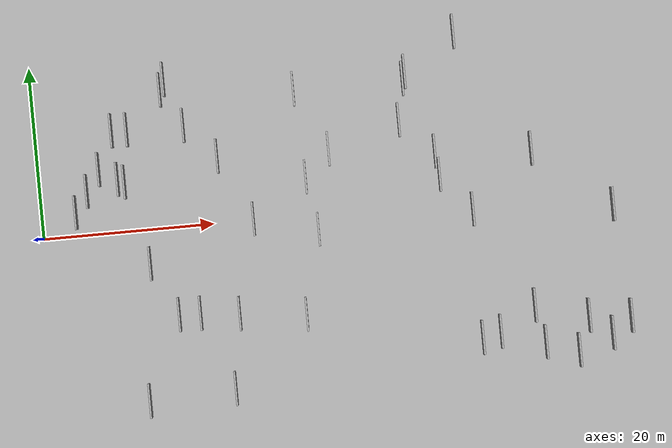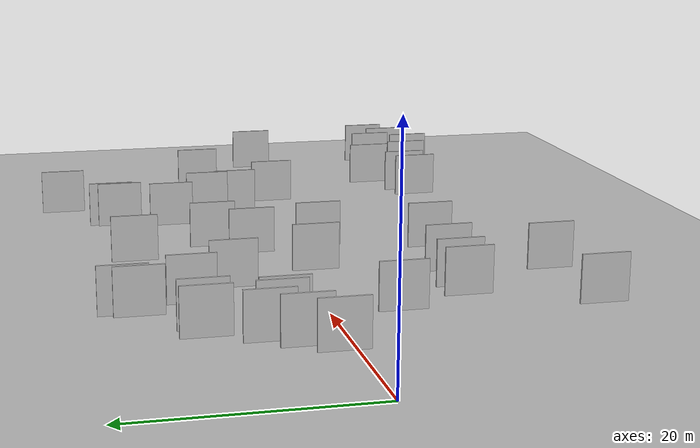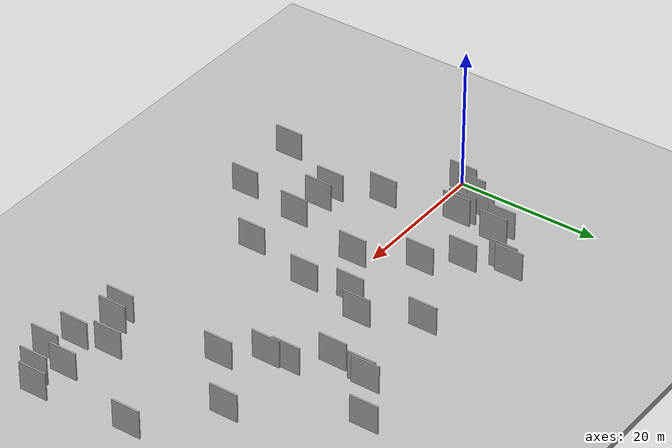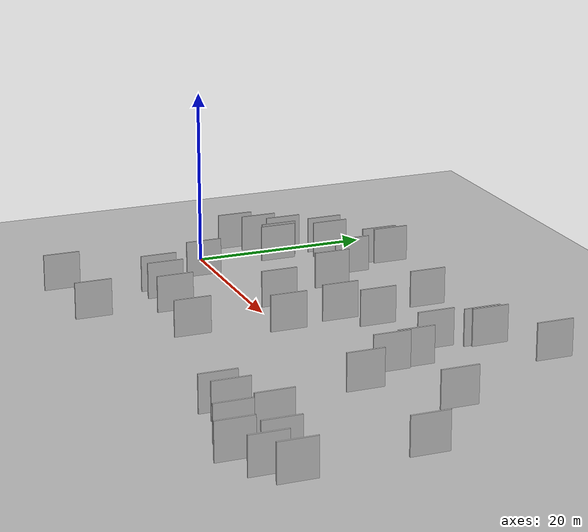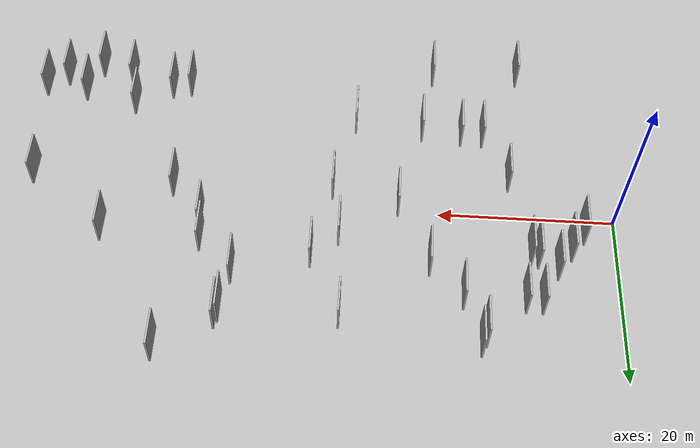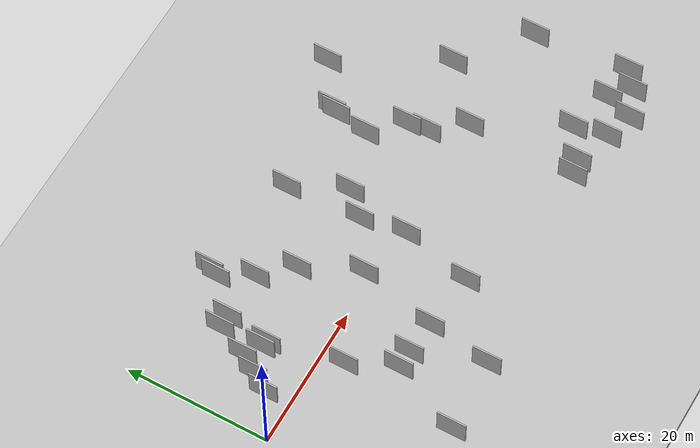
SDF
<?xml version="1.0" encoding="utf-8"?>

<sdf version="1.6">

   <world name="default">

      <gui fullscreen="0">

         <camera name="user_camera">

            <pose>-15 0 4.57585 0 0 0</pose>

            <view_controller>orbit</view_controller>

         </camera>

      </gui>

      <scene>

         <sky>

           <clouds>

             <speed>12</speed>

           </clouds>

         </sky>

         <ambient>0.4 0.4 0.4 1</ambient>

         <background>0.7 0.7 0.7 1</background>

         <shadows>1</shadows>

      </scene>

      <gravity>0 0 -9.8066</gravity>

      <magnetic_field>6e-06 2.3e-05 -4.2e-05</magnetic_field>

      <physics default="0" name="default_physics" type="ode">

         <ode>

            <solver>

               <type>quick</type>

               <iters>10</iters>

               <sor>1.0</sor>

               <use_dynamic_moi_rescaling>0</use_dynamic_moi_rescaling>

            </solver>

            <constraints>

               <cfm>0</cfm>

               <erp>0.2</erp>

               <contact_max_correcting_vel>100</contact_max_correcting_vel>

               <contact_surface_layer>0.001</contact_surface_layer>

            </constraints>

         </ode>

         <max_step_size>0.004</max_step_size>

         <real_time_factor>1</real_time_factor>

         <real_time_update_rate>250</real_time_update_rate>

      </physics>

      <light name="sun" type="directional">

         <cast_shadows>1</cast_shadows>

         <pose>0 0 10 0 0 0</pose>

         <diffuse>0.8 0.8 0.8 1</diffuse>

         <specular>0.2 0.2 0.2 1</specular>

         <attenuation>

            <range>1000</range>

            <constant>0.9</constant>

            <linear>0.01</linear>

            <quadratic>0.001</quadratic>

         </attenuation>

         <direction>-0.5 0.1 -0.9</direction>

      </light>

      <include>

         <name>ground_plane_1</name>

         <uri>model://HANNAS_ground_plane</uri>

         <pose>0 0 0  0 0 0</pose>

      </include>

      <include>

         <name>ground_plane_2</name>

         <uri>model://HANNAS_ground_plane</uri>

         <pose>100 0 0  0 0 0</pose>

      </include>

      <model name="HANNAS_wall_1">

         <static>1</static>

         <pose frame="">43.6180 15.5621 2.5 0.000000 0.000000 1.570796</pose>

         <link name="link">

            <pose frame="">0 0 2.00 0 0 0</pose>

            <collision name="collision">

               <geometry>

                  <box>

                     <size>4.00 0.2 4.00</size>

                  </box>

               </geometry>

               <max_contacts>10</max_contacts>

               <surface>

                  <contact>

                     <ode/>

                  </contact>

                  <bounce/>

                  <friction>

                     <torsional>

                        <ode/>

                     </torsional>

                     <ode/>

                  </friction>

               </surface>

            </collision>

            <visual name="visual">

               <cast_shadows>0</cast_shadows>

               <geometry>

                  <box>

                     <size>4.00 0.2 4.00</size>

                  </box>

               </geometry>

               <material>

                  <script>

                     <uri>model://HANNAS_wall/materials/scripts</uri>

                     <uri>model://HANNAS_wall/materials/textures</uri>

                     <name>vrc/HANNAS_wall</name>

                  </script>

               </material>

            </visual>

            <self_collide>0</self_collide>

            <enable_wind>0</enable_wind>

            <kinematic>0</kinematic>

         </link>

      </model>

      <model name="HANNAS_wall_2">

         <static>1</static>

         <pose frame="">42.4543 10.0352 2.5 0.000000 0.000000 1.570796</pose>

         <link name="link">

            <pose frame="">0 0 2.00 0 0 0</pose>

            <collision name="collision">

               <geometry>

                  <box>

                     <size>4.00 0.2 4.00</size>

                  </box>

               </geometry>

               <max_contacts>10</max_contacts>

               <surface>

                  <contact>

                     <ode/>

                  </contact>

                  <bounce/>

                  <friction>

                     <torsional>

                        <ode/>

                     </torsional>

                     <ode/>

                  </friction>

               </surface>

            </collision>

            <visual name="visual">

               <cast_shadows>0</cast_shadows>

               <geometry>

                  <box>

                     <size>4.00 0.2 4.00</size>

                  </box>

               </geometry>

               <material>

                  <script>

                     <uri>model://HANNAS_wall/materials/scripts</uri>

                     <uri>model://HANNAS_wall/materials/textures</uri>

                     <name>vrc/HANNAS_wall</name>

                  </script>

               </material>

            </visual>

            <self_collide>0</self_collide>

            <enable_wind>0</enable_wind>

            <kinematic>0</kinematic>

         </link>

      </model>

      <model name="HANNAS_wall_3">

         <static>1</static>

         <pose frame="">30.5993 14.7502 2.5 0.000000 0.000000 1.570796</pose>

         <link name="link">

            <pose frame="">0 0 2.00 0 0 0</pose>

            <collision name="collision">

               <geometry>

                  <box>

                     <size>4.00 0.2 4.00</size>

                  </box>

               </geometry>

               <max_contacts>10</max_contacts>

               <surface>

                  <contact>

                     <ode/>

                  </contact>

                  <bounce/>

                  <friction>

                     <torsional>

                        <ode/>

                     </torsional>

                     <ode/>

                  </friction>

               </surface>

            </collision>

            <visual name="visual">

               <cast_shadows>0</cast_shadows>

               <geometry>

                  <box>

                     <size>4.00 0.2 4.00</size>

                  </box>

               </geometry>

               <material>

                  <script>

                     <uri>model://HANNAS_wall/materials/scripts</uri>

                     <uri>model://HANNAS_wall/materials/textures</uri>

                     <name>vrc/HANNAS_wall</name>

                  </script>

               </material>

            </visual>

            <self_collide>0</self_collide>

            <enable_wind>0</enable_wind>

            <kinematic>0</kinematic>

         </link>

      </model>

      <model name="HANNAS_wall_4">

         <static>1</static>

         <pose frame="">46.6108 3.3022 2.5 0.000000 0.000000 1.570796</pose>

         <link name="link">

            <pose frame="">0 0 2.00 0 0 0</pose>

            <collision name="collision">

               <geometry>

                  <box>

                     <size>4.00 0.2 4.00</size>

                  </box>

               </geometry>

               <max_contacts>10</max_contacts>

               <surface>

                  <contact>

                     <ode/>

                  </contact>

                  <bounce/>

                  <friction>

                     <torsional>

                        <ode/>

                     </torsional>

                     <ode/>

                  </friction>

               </surface>

            </collision>

            <visual name="visual">

               <cast_shadows>0</cast_shadows>

               <geometry>

                  <box>

                     <size>4.00 0.2 4.00</size>

                  </box>

               </geometry>

               <material>

                  <script>

                     <uri>model://HANNAS_wall/materials/scripts</uri>

                     <uri>model://HANNAS_wall/materials/textures</uri>

                     <name>vrc/HANNAS_wall</name>

                  </script>

               </material>

            </visual>

            <self_collide>0</self_collide>

            <enable_wind>0</enable_wind>

            <kinematic>0</kinematic>

         </link>

      </model>

      <model name="HANNAS_wall_5">

         <static>1</static>

         <pose frame="">5.6386 5.0842 2.5 0.000000 0.000000 1.570796</pose>

         <link name="link">

            <pose frame="">0 0 2.00 0 0 0</pose>

            <collision name="collision">

               <geometry>

                  <box>

                     <size>4.00 0.2 4.00</size>

                  </box>

               </geometry>

               <max_contacts>10</max_contacts>

               <surface>

                  <contact>

                     <ode/>

                  </contact>

                  <bounce/>

                  <friction>

                     <torsional>

                        <ode/>

                     </torsional>

                     <ode/>

                  </friction>

               </surface>

            </collision>

            <visual name="visual">

               <cast_shadows>0</cast_shadows>

               <geometry>

                  <box>

                     <size>4.00 0.2 4.00</size>

                  </box>

               </geometry>

               <material>

                  <script>

                     <uri>model://HANNAS_wall/materials/scripts</uri>

                     <uri>model://HANNAS_wall/materials/textures</uri>

                     <name>vrc/HANNAS_wall</name>

                  </script>

               </material>

            </visual>

            <self_collide>0</self_collide>

            <enable_wind>0</enable_wind>

            <kinematic>0</kinematic>

         </link>

      </model>

      <model name="HANNAS_wall_6">

         <static>1</static>

         <pose frame="">29.8124 -11.4323 2.5 0.000000 0.000000 1.570796</pose>

         <link name="link">

            <pose frame="">0 0 2.00 0 0 0</pose>

            <collision name="collision">

               <geometry>

                  <box>

                     <size>4.00 0.2 4.00</size>

                  </box>

               </geometry>

               <max_contacts>10</max_contacts>

               <surface>

                  <contact>

                     <ode/>

                  </contact>

                  <bounce/>

                  <friction>

                     <torsional>

                        <ode/>

                     </torsional>

                     <ode/>

                  </friction>

               </surface>

            </collision>

            <visual name="visual">

               <cast_shadows>0</cast_shadows>

               <geometry>

                  <box>

                     <size>4.00 0.2 4.00</size>

                  </box>

               </geometry>

               <material>

                  <script>

                     <uri>model://HANNAS_wall/materials/scripts</uri>

                     <uri>model://HANNAS_wall/materials/textures</uri>

                     <name>vrc/HANNAS_wall</name>

                  </script>

               </material>

            </visual>

            <self_collide>0</self_collide>

            <enable_wind>0</enable_wind>

            <kinematic>0</kinematic>

         </link>

      </model>

      <model name="HANNAS_wall_7">

         <static>1</static>

         <pose frame="">34.0340 7.4608 2.5 0.000000 0.000000 1.570796</pose>

         <link name="link">

            <pose frame="">0 0 2.00 0 0 0</pose>

            <collision name="collision">

               <geometry>

                  <box>

                     <size>4.00 0.2 4.00</size>

                  </box>

               </geometry>

               <max_contacts>10</max_contacts>

               <surface>

                  <contact>

                     <ode/>

                  </contact>

                  <bounce/>

                  <friction>

                     <torsional>

                        <ode/>

                     </torsional>

                     <ode/>

                  </friction>

               </surface>

            </collision>

            <visual name="visual">

               <cast_shadows>0</cast_shadows>

               <geometry>

                  <box>

                     <size>4.00 0.2 4.00</size>

                  </box>

               </geometry>

               <material>

                  <script>

                     <uri>model://HANNAS_wall/materials/scripts</uri>

                     <uri>model://HANNAS_wall/materials/textures</uri>

                     <name>vrc/HANNAS_wall</name>

                  </script>

               </material>

            </visual>

            <self_collide>0</self_collide>

            <enable_wind>0</enable_wind>

            <kinematic>0</kinematic>

         </link>

      </model>

      <model name="HANNAS_wall_8">

         <static>1</static>

         <pose frame="">21.0827 7.7822 2.5 0.000000 0.000000 1.570796</pose>

         <link name="link">

            <pose frame="">0 0 2.00 0 0 0</pose>

            <collision name="collision">

               <geometry>

                  <box>

                     <size>4.00 0.2 4.00</size>

                  </box>

               </geometry>

               <max_contacts>10</max_contacts>

               <surface>

                  <contact>

                     <ode/>

                  </contact>

                  <bounce/>

                  <friction>

                     <torsional>

                        <ode/>

                     </torsional>

                     <ode/>

                  </friction>

               </surface>

            </collision>

            <visual name="visual">

               <cast_shadows>0</cast_shadows>

               <geometry>

                  <box>

                     <size>4.00 0.2 4.00</size>

                  </box>

               </geometry>

               <material>

                  <script>

                     <uri>model://HANNAS_wall/materials/scripts</uri>

                     <uri>model://HANNAS_wall/materials/textures</uri>

                     <name>vrc/HANNAS_wall</name>

                  </script>

               </material>

            </visual>

            <self_collide>0</self_collide>

            <enable_wind>0</enable_wind>

            <kinematic>0</kinematic>

         </link>

      </model>

      <model name="HANNAS_wall_9">

         <static>1</static>

         <pose frame="">66.3487 -1.9586 2.5 0.000000 0.000000 1.570796</pose>

         <link name="link">

            <pose frame="">0 0 2.00 0 0 0</pose>

            <collision name="collision">

               <geometry>

                  <box>

                     <size>4.00 0.2 4.00</size>

                  </box>

               </geometry>

               <max_contacts>10</max_contacts>

               <surface>

                  <contact>

                     <ode/>

                  </contact>

                  <bounce/>

                  <friction>

                     <torsional>

                        <ode/>

                     </torsional>

                     <ode/>

                  </friction>

               </surface>

            </collision>

            <visual name="visual">

               <cast_shadows>0</cast_shadows>

               <geometry>

                  <box>

                     <size>4.00 0.2 4.00</size>

                  </box>

               </geometry>

               <material>

                  <script>

                     <uri>model://HANNAS_wall/materials/scripts</uri>

                     <uri>model://HANNAS_wall/materials/textures</uri>

                     <name>vrc/HANNAS_wall</name>

                  </script>

               </material>

            </visual>

            <self_collide>0</self_collide>

            <enable_wind>0</enable_wind>

            <kinematic>0</kinematic>

         </link>

      </model>

      <model name="HANNAS_wall_10">

         <static>1</static>

         <pose frame="">31.1070 4.4461 2.5 0.000000 0.000000 1.570796</pose>

         <link name="link">

            <pose frame="">0 0 2.00 0 0 0</pose>

            <collision name="collision">

               <geometry>

                  <box>

                     <size>4.00 0.2 4.00</size>

                  </box>

               </geometry>

               <max_contacts>10</max_contacts>

               <surface>

                  <contact>

                     <ode/>

                  </contact>

                  <bounce/>

                  <friction>

                     <torsional>

                        <ode/>

                     </torsional>

                     <ode/>

                  </friction>

               </surface>

            </collision>

            <visual name="visual">

               <cast_shadows>0</cast_shadows>

               <geometry>

                  <box>

                     <size>4.00 0.2 4.00</size>

                  </box>

               </geometry>

               <material>

                  <script>

                     <uri>model://HANNAS_wall/materials/scripts</uri>

                     <uri>model://HANNAS_wall/materials/textures</uri>

                     <name>vrc/HANNAS_wall</name>

                  </script>

               </material>

            </visual>

            <self_collide>0</self_collide>

            <enable_wind>0</enable_wind>

            <kinematic>0</kinematic>

         </link>

      </model>

      <model name="HANNAS_wall_11">

         <static>1</static>

         <pose frame="">15.0589 -10.1258 2.5 0.000000 0.000000 1.570796</pose>

         <link name="link">

            <pose frame="">0 0 2.00 0 0 0</pose>

            <collision name="collision">

               <geometry>

                  <box>

                     <size>4.00 0.2 4.00</size>

                  </box>

               </geometry>

               <max_contacts>10</max_contacts>

               <surface>

                  <contact>

                     <ode/>

                  </contact>

                  <bounce/>

                  <friction>

                     <torsional>

                        <ode/>

                     </torsional>

                     <ode/>

                  </friction>

               </surface>

            </collision>

            <visual name="visual">

               <cast_shadows>0</cast_shadows>

               <geometry>

                  <box>

                     <size>4.00 0.2 4.00</size>

                  </box>

               </geometry>

               <material>

                  <script>

                     <uri>model://HANNAS_wall/materials/scripts</uri>

                     <uri>model://HANNAS_wall/materials/textures</uri>

                     <name>vrc/HANNAS_wall</name>

                  </script>

               </material>

            </visual>

            <self_collide>0</self_collide>

            <enable_wind>0</enable_wind>

            <kinematic>0</kinematic>

         </link>

      </model>

      <model name="HANNAS_wall_12">

         <static>1</static>

         <pose frame="">62.4480 -14.5746 2.5 0.000000 0.000000 1.570796</pose>

         <link name="link">

            <pose frame="">0 0 2.00 0 0 0</pose>

            <collision name="collision">

               <geometry>

                  <box>

                     <size>4.00 0.2 4.00</size>

                  </box>

               </geometry>

               <max_contacts>10</max_contacts>

               <surface>

                  <contact>

                     <ode/>

                  </contact>

                  <bounce/>

                  <friction>

                     <torsional>

                        <ode/>

                     </torsional>

                     <ode/>

                  </friction>

               </surface>

            </collision>

            <visual name="visual">

               <cast_shadows>0</cast_shadows>

               <geometry>

                  <box>

                     <size>4.00 0.2 4.00</size>

                  </box>

               </geometry>

               <material>

                  <script>

                     <uri>model://HANNAS_wall/materials/scripts</uri>

                     <uri>model://HANNAS_wall/materials/textures</uri>

                     <name>vrc/HANNAS_wall</name>

                  </script>

               </material>

            </visual>

            <self_collide>0</self_collide>

            <enable_wind>0</enable_wind>

            <kinematic>0</kinematic>

         </link>

      </model>

      <model name="HANNAS_wall_13">

         <static>1</static>

         <pose frame="">22.0615 -10.6423 2.5 0.000000 0.000000 1.570796</pose>

         <link name="link">

            <pose frame="">0 0 2.00 0 0 0</pose>

            <collision name="collision">

               <geometry>

                  <box>

                     <size>4.00 0.2 4.00</size>

                  </box>

               </geometry>

               <max_contacts>10</max_contacts>

               <surface>

                  <contact>

                     <ode/>

                  </contact>

                  <bounce/>

                  <friction>

                     <torsional>

                        <ode/>

                     </torsional>

                     <ode/>

                  </friction>

               </surface>

            </collision>

            <visual name="visual">

               <cast_shadows>0</cast_shadows>

               <geometry>

                  <box>

                     <size>4.00 0.2 4.00</size>

                  </box>

               </geometry>

               <material>

                  <script>

                     <uri>model://HANNAS_wall/materials/scripts</uri>

                     <uri>model://HANNAS_wall/materials/textures</uri>

                     <name>vrc/HANNAS_wall</name>

                  </script>

               </material>

            </visual>

            <self_collide>0</self_collide>

            <enable_wind>0</enable_wind>

            <kinematic>0</kinematic>

         </link>

      </model>

      <model name="HANNAS_wall_14">

         <static>1</static>

         <pose frame="">20.8357 -19.2652 2.5 0.000000 0.000000 1.570796</pose>

         <link name="link">

            <pose frame="">0 0 2.00 0 0 0</pose>

            <collision name="collision">

               <geometry>

                  <box>

                     <size>4.00 0.2 4.00</size>

                  </box>

               </geometry>

               <max_contacts>10</max_contacts>

               <surface>

                  <contact>

                     <ode/>

                  </contact>

                  <bounce/>

                  <friction>

                     <torsional>

                        <ode/>

                     </torsional>

                     <ode/>

                  </friction>

               </surface>

            </collision>

            <visual name="visual">

               <cast_shadows>0</cast_shadows>

               <geometry>

                  <box>

                     <size>4.00 0.2 4.00</size>

                  </box>

               </geometry>

               <material>

                  <script>

                     <uri>model://HANNAS_wall/materials/scripts</uri>

                     <uri>model://HANNAS_wall/materials/textures</uri>

                     <name>vrc/HANNAS_wall</name>

                  </script>

               </material>

            </visual>

            <self_collide>0</self_collide>

            <enable_wind>0</enable_wind>

            <kinematic>0</kinematic>

         </link>

      </model>

      <model name="HANNAS_wall_15">

         <static>1</static>

         <pose frame="">10.0803 5.7761 2.5 0.000000 0.000000 1.570796</pose>

         <link name="link">

            <pose frame="">0 0 2.00 0 0 0</pose>

            <collision name="collision">

               <geometry>

                  <box>

                     <size>4.00 0.2 4.00</size>

                  </box>

               </geometry>

               <max_contacts>10</max_contacts>

               <surface>

                  <contact>

                     <ode/>

                  </contact>

                  <bounce/>

                  <friction>

                     <torsional>

                        <ode/>

                     </torsional>

                     <ode/>

                  </friction>

               </surface>

            </collision>

            <visual name="visual">

               <cast_shadows>0</cast_shadows>

               <geometry>

                  <box>

                     <size>4.00 0.2 4.00</size>

                  </box>

               </geometry>

               <material>

                  <script>

                     <uri>model://HANNAS_wall/materials/scripts</uri>

                     <uri>model://HANNAS_wall/materials/textures</uri>

                     <name>vrc/HANNAS_wall</name>

                  </script>

               </material>

            </visual>

            <self_collide>0</self_collide>

            <enable_wind>0</enable_wind>

            <kinematic>0</kinematic>

         </link>

      </model>

      <model name="HANNAS_wall_16">

         <static>1</static>

         <pose frame="">49.6668 19.6684 2.5 0.000000 0.000000 1.570796</pose>

         <link name="link">

            <pose frame="">0 0 2.00 0 0 0</pose>

            <collision name="collision">

               <geometry>

                  <box>

                     <size>4.00 0.2 4.00</size>

                  </box>

               </geometry>

               <max_contacts>10</max_contacts>

               <surface>

                  <contact>

                     <ode/>

                  </contact>

                  <bounce/>

                  <friction>

                     <torsional>

                        <ode/>

                     </torsional>

                     <ode/>

                  </friction>

               </surface>

            </collision>

            <visual name="visual">

               <cast_shadows>0</cast_shadows>

               <geometry>

                  <box>

                     <size>4.00 0.2 4.00</size>

                  </box>

               </geometry>

               <material>

                  <script>

                     <uri>model://HANNAS_wall/materials/scripts</uri>

                     <uri>model://HANNAS_wall/materials/textures</uri>

                     <name>vrc/HANNAS_wall</name>

                  </script>

               </material>

            </visual>

            <self_collide>0</self_collide>

            <enable_wind>0</enable_wind>

            <kinematic>0</kinematic>

         </link>

      </model>

      <model name="HANNAS_wall_17">

         <static>1</static>

         <pose frame="">60.9992 -18.4652 2.5 0.000000 0.000000 1.570796</pose>

         <link name="link">

            <pose frame="">0 0 2.00 0 0 0</pose>

            <collision name="collision">

               <geometry>

                  <box>

                     <size>4.00 0.2 4.00</size>

                  </box>

               </geometry>

               <max_contacts>10</max_contacts>

               <surface>

                  <contact>

                     <ode/>

                  </contact>

                  <bounce/>

                  <friction>

                     <torsional>

                        <ode/>

                     </torsional>

                     <ode/>

                  </friction>

               </surface>

            </collision>

            <visual name="visual">

               <cast_shadows>0</cast_shadows>

               <geometry>

                  <box>

                     <size>4.00 0.2 4.00</size>

                  </box>

               </geometry>

               <material>

                  <script>

                     <uri>model://HANNAS_wall/materials/scripts</uri>

                     <uri>model://HANNAS_wall/materials/textures</uri>

                     <name>vrc/HANNAS_wall</name>

                  </script>

               </material>

            </visual>

            <self_collide>0</self_collide>

            <enable_wind>0</enable_wind>

            <kinematic>0</kinematic>

         </link>

      </model>

      <model name="HANNAS_wall_18">

         <static>1</static>

         <pose frame="">49.9387 -16.0041 2.5 0.000000 0.000000 1.570796</pose>

         <link name="link">

            <pose frame="">0 0 2.00 0 0 0</pose>

            <collision name="collision">

               <geometry>

                  <box>

                     <size>4.00 0.2 4.00</size>

                  </box>

               </geometry>

               <max_contacts>10</max_contacts>

               <surface>

                  <contact>

                     <ode/>

                  </contact>

                  <bounce/>

                  <friction>

                     <torsional>

                        <ode/>

                     </torsional>

                     <ode/>

                  </friction>

               </surface>

            </collision>

            <visual name="visual">

               <cast_shadows>0</cast_shadows>

               <geometry>

                  <box>

                     <size>4.00 0.2 4.00</size>

                  </box>

               </geometry>

               <material>

                  <script>

                     <uri>model://HANNAS_wall/materials/scripts</uri>

                     <uri>model://HANNAS_wall/materials/textures</uri>

                     <name>vrc/HANNAS_wall</name>

                  </script>

               </material>

            </visual>

            <self_collide>0</self_collide>

            <enable_wind>0</enable_wind>

            <kinematic>0</kinematic>

         </link>

      </model>

      <model name="HANNAS_wall_19">

         <static>1</static>

         <pose frame="">57.1940 -17.1823 2.5 0.000000 0.000000 1.570796</pose>

         <link name="link">

            <pose frame="">0 0 2.00 0 0 0</pose>

            <collision name="collision">

               <geometry>

                  <box>

                     <size>4.00 0.2 4.00</size>

                  </box>

               </geometry>

               <max_contacts>10</max_contacts>

               <surface>

                  <contact>

                     <ode/>

                  </contact>

                  <bounce/>

                  <friction>

                     <torsional>

                        <ode/>

                     </torsional>

                     <ode/>

                  </friction>

               </surface>

            </collision>

            <visual name="visual">

               <cast_shadows>0</cast_shadows>

               <geometry>

                  <box>

                     <size>4.00 0.2 4.00</size>

                  </box>

               </geometry>

               <material>

                  <script>

                     <uri>model://HANNAS_wall/materials/scripts</uri>

                     <uri>model://HANNAS_wall/materials/textures</uri>

                     <name>vrc/HANNAS_wall</name>

                  </script>

               </material>

            </visual>

            <self_collide>0</self_collide>

            <enable_wind>0</enable_wind>

            <kinematic>0</kinematic>

         </link>

      </model>

      <model name="HANNAS_wall_20">

         <static>1</static>

         <pose frame="">46.3117 6.0436 2.5 0.000000 0.000000 1.570796</pose>

         <link name="link">

            <pose frame="">0 0 2.00 0 0 0</pose>

            <collision name="collision">

               <geometry>

                  <box>

                     <size>4.00 0.2 4.00</size>

                  </box>

               </geometry>

               <max_contacts>10</max_contacts>

               <surface>

                  <contact>

                     <ode/>

                  </contact>

                  <bounce/>

                  <friction>

                     <torsional>

                        <ode/>

                     </torsional>

                     <ode/>

                  </friction>

               </surface>

            </collision>

            <visual name="visual">

               <cast_shadows>0</cast_shadows>

               <geometry>

                  <box>

                     <size>4.00 0.2 4.00</size>

                  </box>

               </geometry>

               <material>

                  <script>

                     <uri>model://HANNAS_wall/materials/scripts</uri>

                     <uri>model://HANNAS_wall/materials/textures</uri>

                     <name>vrc/HANNAS_wall</name>

                  </script>

               </material>

            </visual>

            <self_collide>0</self_collide>

            <enable_wind>0</enable_wind>

            <kinematic>0</kinematic>

         </link>

      </model>

      <model name="HANNAS_wall_21">

         <static>1</static>

         <pose frame="">50.1119 -1.0536 2.5 0.000000 0.000000 1.570796</pose>

         <link name="link">

            <pose frame="">0 0 2.00 0 0 0</pose>

            <collision name="collision">

               <geometry>

                  <box>

                     <size>4.00 0.2 4.00</size>

                  </box>

               </geometry>

               <max_contacts>10</max_contacts>

               <surface>

                  <contact>

                     <ode/>

                  </contact>

                  <bounce/>

                  <friction>

                     <torsional>

                        <ode/>

                     </torsional>

                     <ode/>

                  </friction>

               </surface>

            </collision>

            <visual name="visual">

               <cast_shadows>0</cast_shadows>

               <geometry>

                  <box>

                     <size>4.00 0.2 4.00</size>

                  </box>

               </geometry>

               <material>

                  <script>

                     <uri>model://HANNAS_wall/materials/scripts</uri>

                     <uri>model://HANNAS_wall/materials/textures</uri>

                     <name>vrc/HANNAS_wall</name>

                  </script>

               </material>

            </visual>

            <self_collide>0</self_collide>

            <enable_wind>0</enable_wind>

            <kinematic>0</kinematic>

         </link>

      </model>

      <model name="HANNAS_wall_22">

         <static>1</static>

         <pose frame="">10.8730 11.7922 2.5 0.000000 0.000000 1.570796</pose>

         <link name="link">

            <pose frame="">0 0 2.00 0 0 0</pose>

            <collision name="collision">

               <geometry>

                  <box>

                     <size>4.00 0.2 4.00</size>

                  </box>

               </geometry>

               <max_contacts>10</max_contacts>

               <surface>

                  <contact>

                     <ode/>

                  </contact>

                  <bounce/>

                  <friction>

                     <torsional>

                        <ode/>

                     </torsional>

                     <ode/>

                  </friction>

               </surface>

            </collision>

            <visual name="visual">

               <cast_shadows>0</cast_shadows>

               <geometry>

                  <box>

                     <size>4.00 0.2 4.00</size>

                  </box>

               </geometry>

               <material>

                  <script>

                     <uri>model://HANNAS_wall/materials/scripts</uri>

                     <uri>model://HANNAS_wall/materials/textures</uri>

                     <name>vrc/HANNAS_wall</name>

                  </script>

               </material>

            </visual>

            <self_collide>0</self_collide>

            <enable_wind>0</enable_wind>

            <kinematic>0</kinematic>

         </link>

      </model>

      <model name="HANNAS_wall_23">

         <static>1</static>

         <pose frame="">57.4576 5.3423 2.5 0.000000 0.000000 1.570796</pose>

         <link name="link">

            <pose frame="">0 0 2.00 0 0 0</pose>

            <collision name="collision">

               <geometry>

                  <box>

                     <size>4.00 0.2 4.00</size>

                  </box>

               </geometry>

               <max_contacts>10</max_contacts>

               <surface>

                  <contact>

                     <ode/>

                  </contact>

                  <bounce/>

                  <friction>

                     <torsional>

                        <ode/>

                     </torsional>

                     <ode/>

                  </friction>

               </surface>

            </collision>

            <visual name="visual">

               <cast_shadows>0</cast_shadows>

               <geometry>

                  <box>

                     <size>4.00 0.2 4.00</size>

                  </box>

               </geometry>

               <material>

                  <script>

                     <uri>model://HANNAS_wall/materials/scripts</uri>

                     <uri>model://HANNAS_wall/materials/textures</uri>

                     <name>vrc/HANNAS_wall</name>

                  </script>

               </material>

            </visual>

            <self_collide>0</self_collide>

            <enable_wind>0</enable_wind>

            <kinematic>0</kinematic>

         </link>

      </model>

      <model name="HANNAS_wall_24">

         <static>1</static>

         <pose frame="">24.6403 0.1610 2.5 0.000000 0.000000 1.570796</pose>

         <link name="link">

            <pose frame="">0 0 2.00 0 0 0</pose>

            <collision name="collision">

               <geometry>

                  <box>

                     <size>4.00 0.2 4.00</size>

                  </box>

               </geometry>

               <max_contacts>10</max_contacts>

               <surface>

                  <contact>

                     <ode/>

                  </contact>

                  <bounce/>

                  <friction>

                     <torsional>

                        <ode/>

                     </torsional>

                     <ode/>

                  </friction>

               </surface>

            </collision>

            <visual name="visual">

               <cast_shadows>0</cast_shadows>

               <geometry>

                  <box>

                     <size>4.00 0.2 4.00</size>

                  </box>

               </geometry>

               <material>

                  <script>

                     <uri>model://HANNAS_wall/materials/scripts</uri>

                     <uri>model://HANNAS_wall/materials/textures</uri>

                     <name>vrc/HANNAS_wall</name>

                  </script>

               </material>

            </visual>

            <self_collide>0</self_collide>

            <enable_wind>0</enable_wind>

            <kinematic>0</kinematic>

         </link>

      </model>

      <model name="HANNAS_wall_25">

         <static>1</static>

         <pose frame="">12.2376 -3.9307 2.5 0.000000 0.000000 1.570796</pose>

         <link name="link">

            <pose frame="">0 0 2.00 0 0 0</pose>

            <collision name="collision">

               <geometry>

                  <box>

                     <size>4.00 0.2 4.00</size>

                  </box>

               </geometry>

               <max_contacts>10</max_contacts>

               <surface>

                  <contact>

                     <ode/>

                  </contact>

                  <bounce/>

                  <friction>

                     <torsional>

                        <ode/>

                     </torsional>

                     <ode/>

                  </friction>

               </surface>

            </collision>

            <visual name="visual">

               <cast_shadows>0</cast_shadows>

               <geometry>

                  <box>

                     <size>4.00 0.2 4.00</size>

                  </box>

               </geometry>

               <material>

                  <script>

                     <uri>model://HANNAS_wall/materials/scripts</uri>

                     <uri>model://HANNAS_wall/materials/textures</uri>

                     <name>vrc/HANNAS_wall</name>

                  </script>

               </material>

            </visual>

            <self_collide>0</self_collide>

            <enable_wind>0</enable_wind>

            <kinematic>0</kinematic>

         </link>

      </model>

      <model name="HANNAS_wall_26">

         <static>1</static>

         <pose frame="">43.3046 14.7841 2.5 0.000000 0.000000 1.570796</pose>

         <link name="link">

            <pose frame="">0 0 2.00 0 0 0</pose>

            <collision name="collision">

               <geometry>

                  <box>

                     <size>4.00 0.2 4.00</size>

                  </box>

               </geometry>

               <max_contacts>10</max_contacts>

               <surface>

                  <contact>

                     <ode/>

                  </contact>

                  <bounce/>

                  <friction>

                     <torsional>

                        <ode/>

                     </torsional>

                     <ode/>

                  </friction>

               </surface>

            </collision>

            <visual name="visual">

               <cast_shadows>0</cast_shadows>

               <geometry>

                  <box>

                     <size>4.00 0.2 4.00</size>

                  </box>

               </geometry>

               <material>

                  <script>

                     <uri>model://HANNAS_wall/materials/scripts</uri>

                     <uri>model://HANNAS_wall/materials/textures</uri>

                     <name>vrc/HANNAS_wall</name>

                  </script>

               </material>

            </visual>

            <self_collide>0</self_collide>

            <enable_wind>0</enable_wind>

            <kinematic>0</kinematic>

         </link>

      </model>

      <model name="HANNAS_wall_27">

         <static>1</static>

         <pose frame="">7.2246 7.5000 2.5 0.000000 0.000000 1.570796</pose>

         <link name="link">

            <pose frame="">0 0 2.00 0 0 0</pose>

            <collision name="collision">

               <geometry>

                  <box>

                     <size>4.00 0.2 4.00</size>

                  </box>

               </geometry>

               <max_contacts>10</max_contacts>

               <surface>

                  <contact>

                     <ode/>

                  </contact>

                  <bounce/>

                  <friction>

                     <torsional>

                        <ode/>

                     </torsional>

                     <ode/>

                  </friction>

               </surface>

            </collision>

            <visual name="visual">

               <cast_shadows>0</cast_shadows>

               <geometry>

                  <box>

                     <size>4.00 0.2 4.00</size>

                  </box>

               </geometry>

               <material>

                  <script>

                     <uri>model://HANNAS_wall/materials/scripts</uri>

                     <uri>model://HANNAS_wall/materials/textures</uri>

                     <name>vrc/HANNAS_wall</name>

                  </script>

               </material>

            </visual>

            <self_collide>0</self_collide>

            <enable_wind>0</enable_wind>

            <kinematic>0</kinematic>

         </link>

      </model>

      <model name="HANNAS_wall_28">

         <static>1</static>

         <pose frame="">52.0843 -15.4966 2.5 0.000000 0.000000 1.570796</pose>

         <link name="link">

            <pose frame="">0 0 2.00 0 0 0</pose>

            <collision name="collision">

               <geometry>

                  <box>

                     <size>4.00 0.2 4.00</size>

                  </box>

               </geometry>

               <max_contacts>10</max_contacts>

               <surface>

                  <contact>

                     <ode/>

                  </contact>

                  <bounce/>

                  <friction>

                     <torsional>

                        <ode/>

                     </torsional>

                     <ode/>

                  </friction>

               </surface>

            </collision>

            <visual name="visual">

               <cast_shadows>0</cast_shadows>

               <geometry>

                  <box>

                     <size>4.00 0.2 4.00</size>

                  </box>

               </geometry>

               <material>

                  <script>

                     <uri>model://HANNAS_wall/materials/scripts</uri>

                     <uri>model://HANNAS_wall/materials/textures</uri>

                     <name>vrc/HANNAS_wall</name>

                  </script>

               </material>

            </visual>

            <self_collide>0</self_collide>

            <enable_wind>0</enable_wind>

            <kinematic>0</kinematic>

         </link>

      </model>

      <model name="HANNAS_wall_29">

         <static>1</static>

         <pose frame="">65.0171 -16.8278 2.5 0.000000 0.000000 1.570796</pose>

         <link name="link">

            <pose frame="">0 0 2.00 0 0 0</pose>

            <collision name="collision">

               <geometry>

                  <box>

                     <size>4.00 0.2 4.00</size>

                  </box>

               </geometry>

               <max_contacts>10</max_contacts>

               <surface>

                  <contact>

                     <ode/>

                  </contact>

                  <bounce/>

                  <friction>

                     <torsional>

                        <ode/>

                     </torsional>

                     <ode/>

                  </friction>

               </surface>

            </collision>

            <visual name="visual">

               <cast_shadows>0</cast_shadows>

               <geometry>

                  <box>

                     <size>4.00 0.2 4.00</size>

                  </box>

               </geometry>

               <material>

                  <script>

                     <uri>model://HANNAS_wall/materials/scripts</uri>

                     <uri>model://HANNAS_wall/materials/textures</uri>

                     <name>vrc/HANNAS_wall</name>

                  </script>

               </material>

            </visual>

            <self_collide>0</self_collide>

            <enable_wind>0</enable_wind>

            <kinematic>0</kinematic>

         </link>

      </model>

      <model name="HANNAS_wall_30">

         <static>1</static>

         <pose frame="">9.1048 11.8392 2.5 0.000000 0.000000 1.570796</pose>

         <link name="link">

            <pose frame="">0 0 2.00 0 0 0</pose>

            <collision name="collision">

               <geometry>

                  <box>

                     <size>4.00 0.2 4.00</size>

                  </box>

               </geometry>

               <max_contacts>10</max_contacts>

               <surface>

                  <contact>

                     <ode/>

                  </contact>

                  <bounce/>

                  <friction>

                     <torsional>

                        <ode/>

                     </torsional>

                     <ode/>

                  </friction>

               </surface>

            </collision>

            <visual name="visual">

               <cast_shadows>0</cast_shadows>

               <geometry>

                  <box>

                     <size>4.00 0.2 4.00</size>

                  </box>

               </geometry>

               <material>

                  <script>

                     <uri>model://HANNAS_wall/materials/scripts</uri>

                     <uri>model://HANNAS_wall/materials/textures</uri>

                     <name>vrc/HANNAS_wall</name>

                  </script>

               </material>

            </visual>

            <self_collide>0</self_collide>

            <enable_wind>0</enable_wind>

            <kinematic>0</kinematic>

         </link>

      </model>

      <model name="HANNAS_wall_31">

         <static>1</static>

         <pose frame="">10.7800 -19.7965 2.5 0.000000 0.000000 1.570796</pose>

         <link name="link">

            <pose frame="">0 0 2.00 0 0 0</pose>

            <collision name="collision">

               <geometry>

                  <box>

                     <size>4.00 0.2 4.00</size>

                  </box>

               </geometry>

               <max_contacts>10</max_contacts>

               <surface>

                  <contact>

                     <ode/>

                  </contact>

                  <bounce/>

                  <friction>

                     <torsional>

                        <ode/>

                     </torsional>

                     <ode/>

                  </friction>

               </surface>

            </collision>

            <visual name="visual">

               <cast_shadows>0</cast_shadows>

               <geometry>

                  <box>

                     <size>4.00 0.2 4.00</size>

                  </box>

               </geometry>

               <material>

                  <script>

                     <uri>model://HANNAS_wall/materials/scripts</uri>

                     <uri>model://HANNAS_wall/materials/textures</uri>

                     <name>vrc/HANNAS_wall</name>

                  </script>

               </material>

            </visual>

            <self_collide>0</self_collide>

            <enable_wind>0</enable_wind>

            <kinematic>0</kinematic>

         </link>

      </model>

      <model name="HANNAS_wall_32">

         <static>1</static>

         <pose frame="">4.1365 2.7649 2.5 0.000000 0.000000 1.570796</pose>

         <link name="link">

            <pose frame="">0 0 2.00 0 0 0</pose>

            <collision name="collision">

               <geometry>

                  <box>

                     <size>4.00 0.2 4.00</size>

                  </box>

               </geometry>

               <max_contacts>10</max_contacts>

               <surface>

                  <contact>

                     <ode/>

                  </contact>

                  <bounce/>

                  <friction>

                     <torsional>

                        <ode/>

                     </torsional>

                     <ode/>

                  </friction>

               </surface>

            </collision>

            <visual name="visual">

               <cast_shadows>0</cast_shadows>

               <geometry>

                  <box>

                     <size>4.00 0.2 4.00</size>

                  </box>

               </geometry>

               <material>

                  <script>

                     <uri>model://HANNAS_wall/materials/scripts</uri>

                     <uri>model://HANNAS_wall/materials/textures</uri>

                     <name>vrc/HANNAS_wall</name>

                  </script>

               </material>

            </visual>

            <self_collide>0</self_collide>

            <enable_wind>0</enable_wind>

            <kinematic>0</kinematic>

         </link>

      </model>

      <model name="HANNAS_wall_33">

         <static>1</static>

         <pose frame="">67.3287 -15.0506 2.5 0.000000 0.000000 1.570796</pose>

         <link name="link">

            <pose frame="">0 0 2.00 0 0 0</pose>

            <collision name="collision">

               <geometry>

                  <box>

                     <size>4.00 0.2 4.00</size>

                  </box>

               </geometry>

               <max_contacts>10</max_contacts>

               <surface>

                  <contact>

                     <ode/>

                  </contact>

                  <bounce/>

                  <friction>

                     <torsional>

                        <ode/>

                     </torsional>

                     <ode/>

                  </friction>

               </surface>

            </collision>

            <visual name="visual">

               <cast_shadows>0</cast_shadows>

               <geometry>

                  <box>

                     <size>4.00 0.2 4.00</size>

                  </box>

               </geometry>

               <material>

                  <script>

                     <uri>model://HANNAS_wall/materials/scripts</uri>

                     <uri>model://HANNAS_wall/materials/textures</uri>

                     <name>vrc/HANNAS_wall</name>

                  </script>

               </material>

            </visual>

            <self_collide>0</self_collide>

            <enable_wind>0</enable_wind>

            <kinematic>0</kinematic>

         </link>

      </model>

      <model name="HANNAS_wall_34">

         <static>1</static>

         <pose frame="">9.3134 6.1668 2.5 0.000000 0.000000 1.570796</pose>

         <link name="link">

            <pose frame="">0 0 2.00 0 0 0</pose>

            <collision name="collision">

               <geometry>

                  <box>

                     <size>4.00 0.2 4.00</size>

                  </box>

               </geometry>

               <max_contacts>10</max_contacts>

               <surface>

                  <contact>

                     <ode/>

                  </contact>

                  <bounce/>

                  <friction>

                     <torsional>

                        <ode/>

                     </torsional>

                     <ode/>

                  </friction>

               </surface>

            </collision>

            <visual name="visual">

               <cast_shadows>0</cast_shadows>

               <geometry>

                  <box>

                     <size>4.00 0.2 4.00</size>

                  </box>

               </geometry>

               <material>

                  <script>

                     <uri>model://HANNAS_wall/materials/scripts</uri>

                     <uri>model://HANNAS_wall/materials/textures</uri>

                     <name>vrc/HANNAS_wall</name>

                  </script>

               </material>

            </visual>

            <self_collide>0</self_collide>

            <enable_wind>0</enable_wind>

            <kinematic>0</kinematic>

         </link>

      </model>

      <model name="HANNAS_wall_35">

         <static>1</static>

         <pose frame="">17.5364 -10.1974 2.5 0.000000 0.000000 1.570796</pose>

         <link name="link">

            <pose frame="">0 0 2.00 0 0 0</pose>

            <collision name="collision">

               <geometry>

                  <box>

                     <size>4.00 0.2 4.00</size>

                  </box>

               </geometry>

               <max_contacts>10</max_contacts>

               <surface>

                  <contact>

                     <ode/>

                  </contact>

                  <bounce/>

                  <friction>

                     <torsional>

                        <ode/>

                     </torsional>

                     <ode/>

                  </friction>

               </surface>

            </collision>

            <visual name="visual">

               <cast_shadows>0</cast_shadows>

               <geometry>

                  <box>

                     <size>4.00 0.2 4.00</size>

                  </box>

               </geometry>

               <material>

                  <script>

                     <uri>model://HANNAS_wall/materials/scripts</uri>

                     <uri>model://HANNAS_wall/materials/textures</uri>

                     <name>vrc/HANNAS_wall</name>

                  </script>

               </material>

            </visual>

            <self_collide>0</self_collide>

            <enable_wind>0</enable_wind>

            <kinematic>0</kinematic>

         </link>

      </model>

      <model name="HANNAS_wall_36">

         <static>1</static>

         <pose frame="">15.1324 16.0455 2.5 0.000000 0.000000 1.570796</pose>

         <link name="link">

            <pose frame="">0 0 2.00 0 0 0</pose>

            <collision name="collision">

               <geometry>

                  <box>

                     <size>4.00 0.2 4.00</size>

                  </box>

               </geometry>

               <max_contacts>10</max_contacts>

               <surface>

                  <contact>

                     <ode/>

                  </contact>

                  <bounce/>

                  <friction>

                     <torsional>

                        <ode/>

                     </torsional>

                     <ode/>

                  </friction>

               </surface>

            </collision>

            <visual name="visual">

               <cast_shadows>0</cast_shadows>

               <geometry>

                  <box>

                     <size>4.00 0.2 4.00</size>

                  </box>

               </geometry>

               <material>

                  <script>

                     <uri>model://HANNAS_wall/materials/scripts</uri>

                     <uri>model://HANNAS_wall/materials/textures</uri>

                     <name>vrc/HANNAS_wall</name>

                  </script>

               </material>

            </visual>

            <self_collide>0</self_collide>

            <enable_wind>0</enable_wind>

            <kinematic>0</kinematic>

         </link>

      </model>

      <model name="HANNAS_wall_37">

         <static>1</static>

         <pose frame="">32.0662 -1.7377 2.5 0.000000 0.000000 1.570796</pose>

         <link name="link">

            <pose frame="">0 0 2.00 0 0 0</pose>

            <collision name="collision">

               <geometry>

                  <box>

                     <size>4.00 0.2 4.00</size>

                  </box>

               </geometry>

               <max_contacts>10</max_contacts>

               <surface>

                  <contact>

                     <ode/>

                  </contact>

                  <bounce/>

                  <friction>

                     <torsional>

                        <ode/>

                     </torsional>

                     <ode/>

                  </friction>

               </surface>

            </collision>

            <visual name="visual">

               <cast_shadows>0</cast_shadows>

               <geometry>

                  <box>

                     <size>4.00 0.2 4.00</size>

                  </box>

               </geometry>

               <material>

                  <script>

                     <uri>model://HANNAS_wall/materials/scripts</uri>

                     <uri>model://HANNAS_wall/materials/textures</uri>

                     <name>vrc/HANNAS_wall</name>

                  </script>

               </material>

            </visual>

            <self_collide>0</self_collide>

            <enable_wind>0</enable_wind>

            <kinematic>0</kinematic>

         </link>

      </model>

      <model name="HANNAS_wall_38">

         <static>1</static>

         <pose frame="">15.6477 17.2207 2.5 0.000000 0.000000 1.570796</pose>

         <link name="link">

            <pose frame="">0 0 2.00 0 0 0</pose>

            <collision name="collision">

               <geometry>

                  <box>

                     <size>4.00 0.2 4.00</size>

                  </box>

               </geometry>

               <max_contacts>10</max_contacts>

               <surface>

                  <contact>

                     <ode/>

                  </contact>

                  <bounce/>

                  <friction>

                     <torsional>

                        <ode/>

                     </torsional>

                     <ode/>

                  </friction>

               </surface>

            </collision>

            <visual name="visual">

               <cast_shadows>0</cast_shadows>

               <geometry>

                  <box>

                     <size>4.00 0.2 4.00</size>

                  </box>

               </geometry>

               <material>

                  <script>

                     <uri>model://HANNAS_wall/materials/scripts</uri>

                     <uri>model://HANNAS_wall/materials/textures</uri>

                     <name>vrc/HANNAS_wall</name>

                  </script>

               </material>

            </visual>

            <self_collide>0</self_collide>

            <enable_wind>0</enable_wind>

            <kinematic>0</kinematic>

         </link>

      </model>

      <model name="HANNAS_wall_39">

         <static>1</static>

         <pose frame="">56.2694 -12.8174 2.5 0.000000 0.000000 1.570796</pose>

         <link name="link">

            <pose frame="">0 0 2.00 0 0 0</pose>

            <collision name="collision">

               <geometry>

                  <box>

                     <size>4.00 0.2 4.00</size>

                  </box>

               </geometry>

               <max_contacts>10</max_contacts>

               <surface>

                  <contact>

                     <ode/>

                  </contact>

                  <bounce/>

                  <friction>

                     <torsional>

                        <ode/>

                     </torsional>

                     <ode/>

                  </friction>

               </surface>

            </collision>

            <visual name="visual">

               <cast_shadows>0</cast_shadows>

               <geometry>

                  <box>

                     <size>4.00 0.2 4.00</size>

                  </box>

               </geometry>

               <material>

                  <script>

                     <uri>model://HANNAS_wall/materials/scripts</uri>

                     <uri>model://HANNAS_wall/materials/textures</uri>

                     <name>vrc/HANNAS_wall</name>

                  </script>

               </material>

            </visual>

            <self_collide>0</self_collide>

            <enable_wind>0</enable_wind>

            <kinematic>0</kinematic>

         </link>

      </model>

      <model name="HANNAS_wall_40">

         <static>1</static>

         <pose frame="">17.4766 11.7013 2.5 0.000000 0.000000 1.570796</pose>

         <link name="link">

            <pose frame="">0 0 2.00 0 0 0</pose>

            <collision name="collision">

               <geometry>

                  <box>

                     <size>4.00 0.2 4.00</size>

                  </box>

               </geometry>

               <max_contacts>10</max_contacts>

               <surface>

                  <contact>

                     <ode/>

                  </contact>

                  <bounce/>

                  <friction>

                     <torsional>

                        <ode/>

                     </torsional>

                     <ode/>

                  </friction>

               </surface>

            </collision>

            <visual name="visual">

               <cast_shadows>0</cast_shadows>

               <geometry>

                  <box>

                     <size>4.00 0.2 4.00</size>

                  </box>

               </geometry>

               <material>

                  <script>

                     <uri>model://HANNAS_wall/materials/scripts</uri>

                     <uri>model://HANNAS_wall/materials/textures</uri>

                     <name>vrc/HANNAS_wall</name>

                  </script>

               </material>

            </visual>

            <self_collide>0</self_collide>

            <enable_wind>0</enable_wind>

            <kinematic>0</kinematic>

         </link>

      </model>

   </world>

</sdf>
